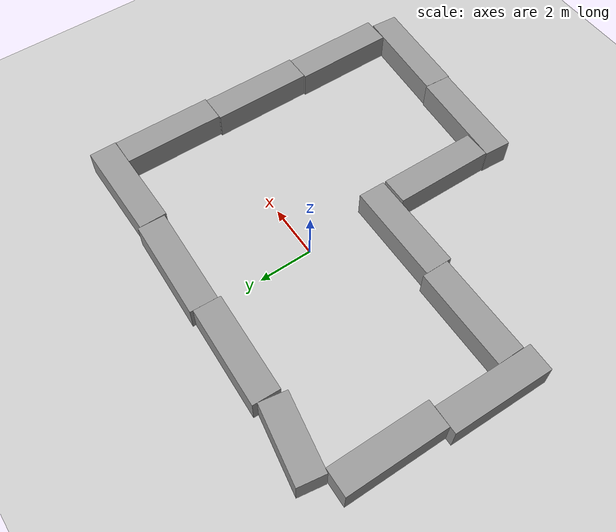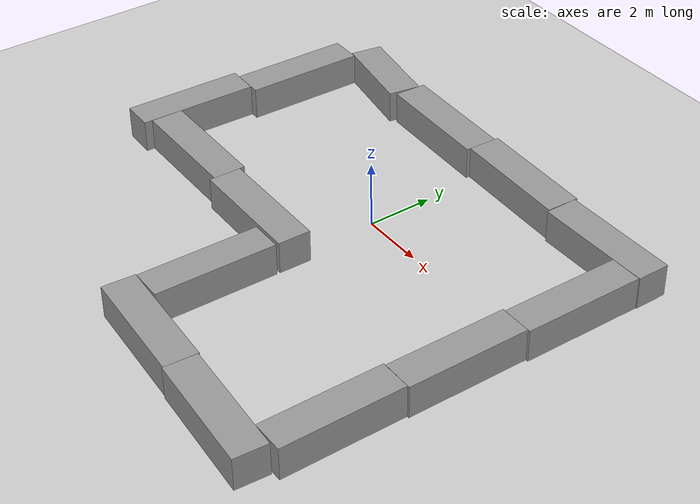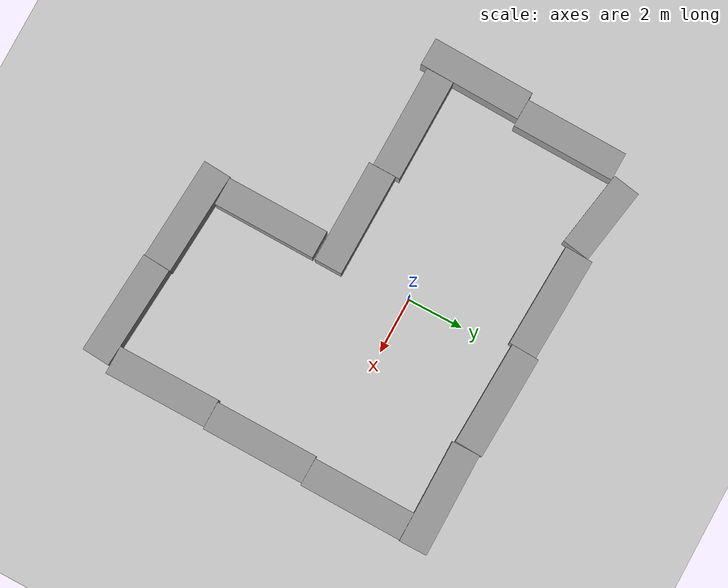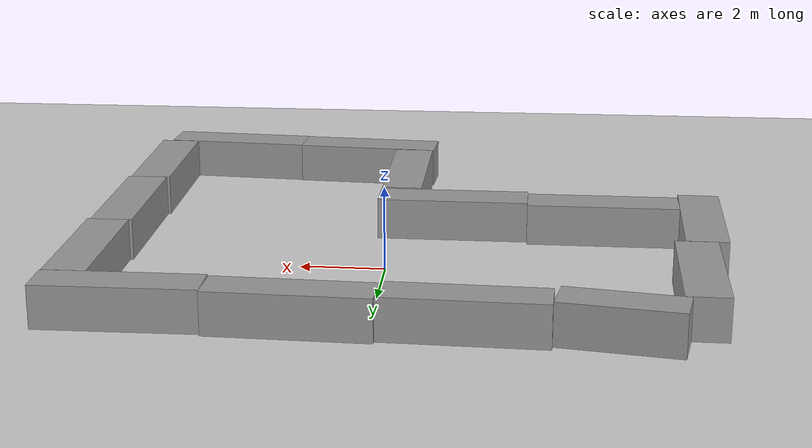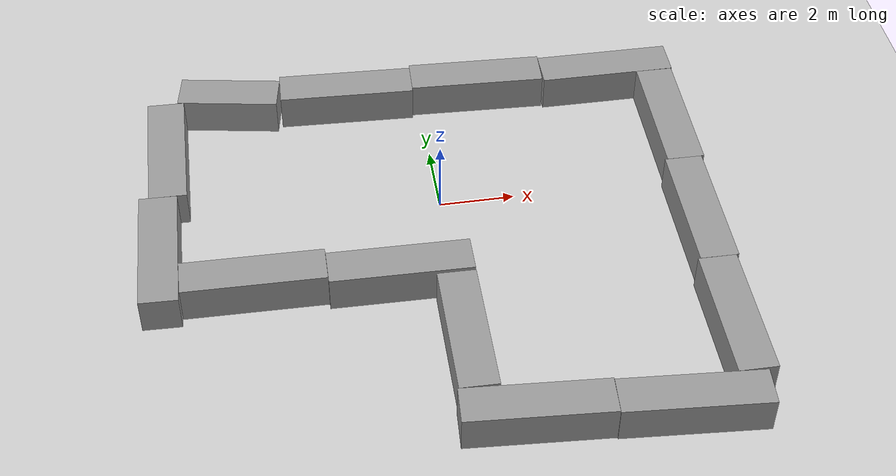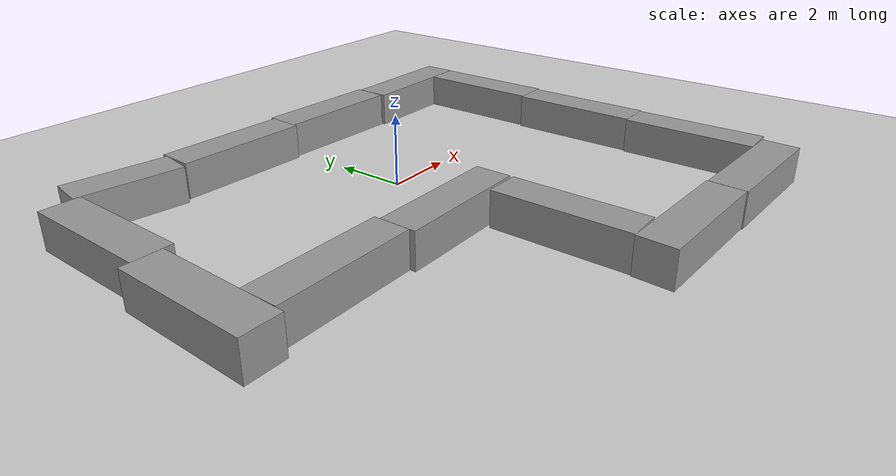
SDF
<sdf version="1.7">
 <world name="default">
  <light name="sun" type="directional">
   <pose>0 0 10 0 -0 0</pose>
   <diffuse>0.8 0.8 0.8 1</diffuse>
   <specular>0.2 0.2 0.2 1</specular>
   <attenuation>
    <range>1000</range>
    <constant>0.9</constant>
    <linear>0.01</linear>
    <quadratic>0.001</quadratic>
   </attenuation>
   <direction>-0.5 0.1 -0.9</direction>
   <spot><inner_angle>0</inner_angle><outer_angle>0</outer_angle><falloff>0</falloff></spot>
  </light>
  <model name="ground_plane">
   <static>1</static>
   <link name="link">
    <collision name="collision">
     <geometry><plane><normal>0 0 1</normal><size>100 100</size></plane></geometry>
     <surface>
      <contact><collide_bitmask>65535</collide_bitmask></contact>
      <friction><ode><mu>100</mu><mu2>50</mu2></ode></friction>
     </surface>
    </collision>
    <visual name="visual">
     <cast_shadows>0</cast_shadows>
     <geometry><plane><normal>0 0 1</normal><size>100 100</size></plane></geometry>
     <material>
      <script><uri>file://media/materials/scripts/gazebo.material</uri><name>Gazebo/Grey</name></script>
     </material>
    </visual>
   </link>
  </model>
  <gravity>0 0 -9.8</gravity>
  <magnetic_field>6e-06 2.3e-05 -4.2e-05</magnetic_field>
  <atmosphere type="adiabatic"/>
  <physics type="ode">
   <max_step_size>0.001</max_step_size>
   <real_time_factor>1</real_time_factor>
   <real_time_update_rate>1000</real_time_update_rate>
  </physics>
  <scene><ambient>0.4 0.4 0.4 1</ambient><background>0.7 0.7 0.7 1</background><shadows>1</shadows></scene>
  <audio><device>default</device></audio>
  <spherical_coordinates>
   <surface_model>EARTH_WGS84</surface_model>
   <latitude_deg>0</latitude_deg>
   <longitude_deg>0</longitude_deg>
   <elevation>0</elevation>
   <heading_deg>0</heading_deg>
  </spherical_coordinates>
  <model name="unit_box">
   <pose>-2.05975 4.18493 0.5 -0 -0 -0.040499</pose>
   <link name="link">
    <inertial>
     <mass>1</mass>
     <inertia>
      <ixx>0.166667</ixx>
      <ixy>0</ixy>
      <ixz>0</ixz>
      <iyy>0.166667</iyy>
      <iyz>0</iyz>
      <izz>0.166667</izz>
     </inertia>
    </inertial>
    <collision name="collision"><geometry><box><size>3.6933 1 1</size></box></geometry></collision>
    <visual name="visual">
     <geometry><box><size>3.6933 1 1</size></box></geometry>
     <material>
      <script><name>Gazebo/Grey</name><uri>file://media/materials/scripts/gazebo.material</uri></script>
     </material>
    </visual>
   </link>
  </model>
  <model name="unit_box_clone">
   <pose>-5.33321 4.32643 0.5 -0 -0 -0.169969</pose>
   <link name="link">
    <inertial>
     <mass>1</mass>
     <inertia>
      <ixx>0.166667</ixx>
      <ixy>0</ixy>
      <ixz>0</ixz>
      <iyy>0.166667</iyy>
      <iyz>0</iyz>
      <izz>0.166667</izz>
     </inertia>
    </inertial>
    <collision name="collision"><geometry><box><size>2.75314 1 1</size></box></geometry></collision>
    <visual name="visual">
     <geometry><box><size>2.75314 1 1</size></box></geometry>
     <material>
      <script><name>Gazebo/Grey</name><uri>file://media/materials/scripts/gazebo.material</uri></script>
     </material>
    </visual>
   </link>
  </model>
  <model name="unit_box_clone_0">
   <pose>1.6353 4.14553 0.5 0 0 -0.040059</pose>
   <link name="link">
    <inertial>
     <mass>1</mass>
     <inertia>
      <ixx>0.166667</ixx>
      <ixy>0</ixy>
      <ixz>0</ixz>
      <iyy>0.166667</iyy>
      <iyz>0</iyz>
      <izz>0.166667</izz>
     </inertia>
    </inertial>
    <collision name="collision"><geometry><box><size>3.6933 1 1</size></box></geometry></collision>
    <visual name="visual">
     <geometry><box><size>3.6933 1 1</size></box></geometry>
     <material>
      <script><name>Gazebo/Grey</name><uri>file://media/materials/scripts/gazebo.material</uri></script>
     </material>
    </visual>
   </link>
  </model>
  <model name="unit_box_clone_1">
   <pose>5.34414 3.99155 0.5 0 -0 0.00018</pose>
   <link name="link">
    <inertial>
     <mass>1</mass>
     <inertia>
      <ixx>0.166667</ixx>
      <ixy>0</ixy>
      <ixz>0</ixz>
      <iyy>0.166667</iyy>
      <iyz>0</iyz>
      <izz>0.166667</izz>
     </inertia>
    </inertial>
    <collision name="collision"><geometry><box><size>3.6933 1 1</size></box></geometry></collision>
    <visual name="visual">
     <geometry><box><size>3.6933 1 1</size></box></geometry>
     <material>
      <script><name>Gazebo/Grey</name><uri>file://media/materials/scripts/gazebo.material</uri></script>
     </material>
    </visual>
   </link>
  </model>
  <model name="unit_box_clone_2">
   <pose>6.64852 1.64028 0.5 1e-06 -0 1.56126</pose>
   <link name="link">
    <inertial>
     <mass>1</mass>
     <inertia>
      <ixx>0.166667</ixx>
      <ixy>0</ixy>
      <ixz>0</ixz>
      <iyy>0.166667</iyy>
      <iyz>0</iyz>
      <izz>0.166667</izz>
     </inertia>
    </inertial>
    <collision name="collision"><geometry><box><size>3.6933 1 1</size></box></geometry></collision>
    <visual name="visual">
     <geometry><box><size>3.6933 1 1</size></box></geometry>
     <material>
      <script><name>Gazebo/Grey</name><uri>file://media/materials/scripts/gazebo.material</uri></script>
     </material>
    </visual>
   </link>
  </model>
  <model name="unit_box_clone_2_clone">
   <pose>6.5448 -2.0535 0.499998 5e-06 -0 1.56387</pose>
   <link name="link">
    <inertial>
     <mass>1</mass>
     <inertia>
      <ixx>0.166667</ixx>
      <ixy>0</ixy>
      <ixz>0</ixz>
      <iyy>0.166667</iyy>
      <iyz>0</iyz>
      <izz>0.166667</izz>
     </inertia>
    </inertial>
    <collision name="collision"><geometry><box><size>3.6933 1 1</size></box></geometry></collision>
    <visual name="visual">
     <geometry><box><size>3.6933 1 1</size></box></geometry>
     <material>
      <script><name>Gazebo/Grey</name><uri>file://media/materials/scripts/gazebo.material</uri></script>
     </material>
    </visual>
   </link>
  </model>
  <model name="unit_box_clone_2_clone_0">
   <pose>6.45966 -5.74843 0.5 0 -0 1.56722</pose>
   <link name="link">
    <inertial>
     <mass>1</mass>
     <inertia>
      <ixx>0.166667</ixx>
      <ixy>0</ixy>
      <ixz>0</ixz>
      <iyy>0.166667</iyy>
      <iyz>0</iyz>
      <izz>0.166667</izz>
     </inertia>
    </inertial>
    <collision name="collision"><geometry><box><size>3.6933 1 1</size></box></geometry></collision>
    <visual name="visual">
     <geometry><box><size>3.6933 1 1</size></box></geometry>
     <material>
      <script><name>Gazebo/Grey</name><uri>file://media/materials/scripts/gazebo.material</uri></script>
     </material>
    </visual>
   </link>
  </model>
  <model name="unit_box_clone_1_clone">
   <pose>4.80607 -8.01399 0.499996 -7e-06 -0 -0.070101</pose>
   <link name="link">
    <inertial>
     <mass>1</mass>
     <inertia>
      <ixx>0.166667</ixx>
      <ixy>0</ixy>
      <ixz>0</ixz>
      <iyy>0.166667</iyy>
      <iyz>0</iyz>
      <izz>0.166667</izz>
     </inertia>
    </inertial>
    <collision name="collision"><geometry><box><size>3.6933 1 1</size></box></geometry></collision>
    <visual name="visual">
     <geometry><box><size>3.6933 1 1</size></box></geometry>
     <material>
      <script><name>Gazebo/Grey</name><uri>file://media/materials/scripts/gazebo.material</uri></script>
     </material>
    </visual>
   </link>
  </model>
  <model name="unit_box_clone_1_clone_clone">
   <pose>1.12049 -7.73201 0.5 -0 -0 -0.064149</pose>
   <link name="link">
    <inertial>
     <mass>1</mass>
     <inertia>
      <ixx>0.166667</ixx>
      <ixy>0</ixy>
      <ixz>0</ixz>
      <iyy>0.166667</iyy>
      <iyz>0</iyz>
      <izz>0.166667</izz>
     </inertia>
    </inertial>
    <collision name="collision"><geometry><box><size>3.6933 1 1</size></box></geometry></collision>
    <visual name="visual">
     <geometry><box><size>3.6933 1 1</size></box></geometry>
     <material>
      <script><name>Gazebo/Grey</name><uri>file://media/materials/scripts/gazebo.material</uri></script>
     </material>
    </visual>
   </link>
  </model>
  <model name="unit_box_clone_2_clone_clone">
   <pose>-0.137922 -5.27498 0.499997 -6e-06 -0 1.56018</pose>
   <link name="link">
    <inertial>
     <mass>1</mass>
     <inertia>
      <ixx>0.166667</ixx>
      <ixy>0</ixy>
      <ixz>0</ixz>
      <iyy>0.166667</iyy>
      <iyz>0</iyz>
      <izz>0.166667</izz>
     </inertia>
    </inertial>
    <collision name="collision"><geometry><box><size>3.6933 1 1</size></box></geometry></collision>
    <visual name="visual">
     <geometry><box><size>3.6933 1 1</size></box></geometry>
     <material>
      <script><name>Gazebo/Grey</name><uri>file://media/materials/scripts/gazebo.material</uri></script>
     </material>
    </visual>
   </link>
  </model>
  <model name="unit_box_clone_1_clone_clone_clone">
   <pose>-1.45527 -2.82376 0.499493 -0 0.000274 -0.012084</pose>
   <link name="link">
    <inertial>
     <mass>1</mass>
     <inertia>
      <ixx>0.166667</ixx>
      <ixy>0</ixy>
      <ixz>0</ixz>
      <iyy>0.166667</iyy>
      <iyz>0</iyz>
      <izz>0.166667</izz>
     </inertia>
    </inertial>
    <collision name="collision"><geometry><box><size>3.6933 1 1</size></box></geometry></collision>
    <visual name="visual">
     <geometry><box><size>3.6933 1 1</size></box></geometry>
     <material>
      <script><name>Gazebo/Grey</name><uri>file://media/materials/scripts/gazebo.material</uri></script>
     </material>
    </visual>
   </link>
  </model>
  <model name="unit_box_clone_1_clone_clone_clone_0">
   <pose>-5.14897 -2.62596 0.499595 0 0.000219 -0.011395</pose>
   <link name="link">
    <inertial>
     <mass>1</mass>
     <inertia>
      <ixx>0.166667</ixx>
      <ixy>0</ixy>
      <ixz>0</ixz>
      <iyy>0.166667</iyy>
      <iyz>0</iyz>
      <izz>0.166667</izz>
     </inertia>
    </inertial>
    <collision name="collision"><geometry><box><size>3.6933 1 1</size></box></geometry></collision>
    <visual name="visual">
     <geometry><box><size>3.6933 1 1</size></box></geometry>
     <material>
      <script><name>Gazebo/Grey</name><uri>file://media/materials/scripts/gazebo.material</uri></script>
     </material>
    </visual>
   </link>
  </model>
  <model name="unit_box_clone_2_clone_clone_0">
   <pose>-7.13316 2.19915 0.499548 0 -0.000245 1.55219</pose>
   <link name="link">
    <inertial>
     <mass>1</mass>
     <inertia>
      <ixx>0.166667</ixx>
      <ixy>0</ixy>
      <ixz>0</ixz>
      <iyy>0.166667</iyy>
      <iyz>0</iyz>
      <izz>0.166667</izz>
     </inertia>
    </inertial>
    <collision name="collision"><geometry><box><size>3.6933 1 1</size></box></geometry></collision>
    <visual name="visual">
     <geometry><box><size>3.6933 1 1</size></box></geometry>
     <material>
      <script><name>Gazebo/Grey</name><uri>file://media/materials/scripts/gazebo.material</uri></script>
     </material>
    </visual>
   </link>
  </model>
  <model name="unit_box_clone_2_clone_clone_1">
   <pose>-7.47347 -1.49047 0.499995 -8e-06 -1e-06 1.54397</pose>
   <link name="link">
    <inertial>
     <mass>1</mass>
     <inertia>
      <ixx>0.166667</ixx>
      <ixy>0</ixy>
      <ixz>0</ixz>
      <iyy>0.166667</iyy>
      <iyz>0</iyz>
      <izz>0.166667</izz>
     </inertia>
    </inertial>
    <collision name="collision"><geometry><box><size>3.6933 1 1</size></box></geometry></collision>
    <visual name="visual">
     <geometry><box><size>3.6933 1 1</size></box></geometry>
     <material>
      <script><name>Gazebo/Grey</name><uri>file://media/materials/scripts/gazebo.material</uri></script>
     </material>
    </visual>
   </link>
  </model>
 </world>
</sdf>
